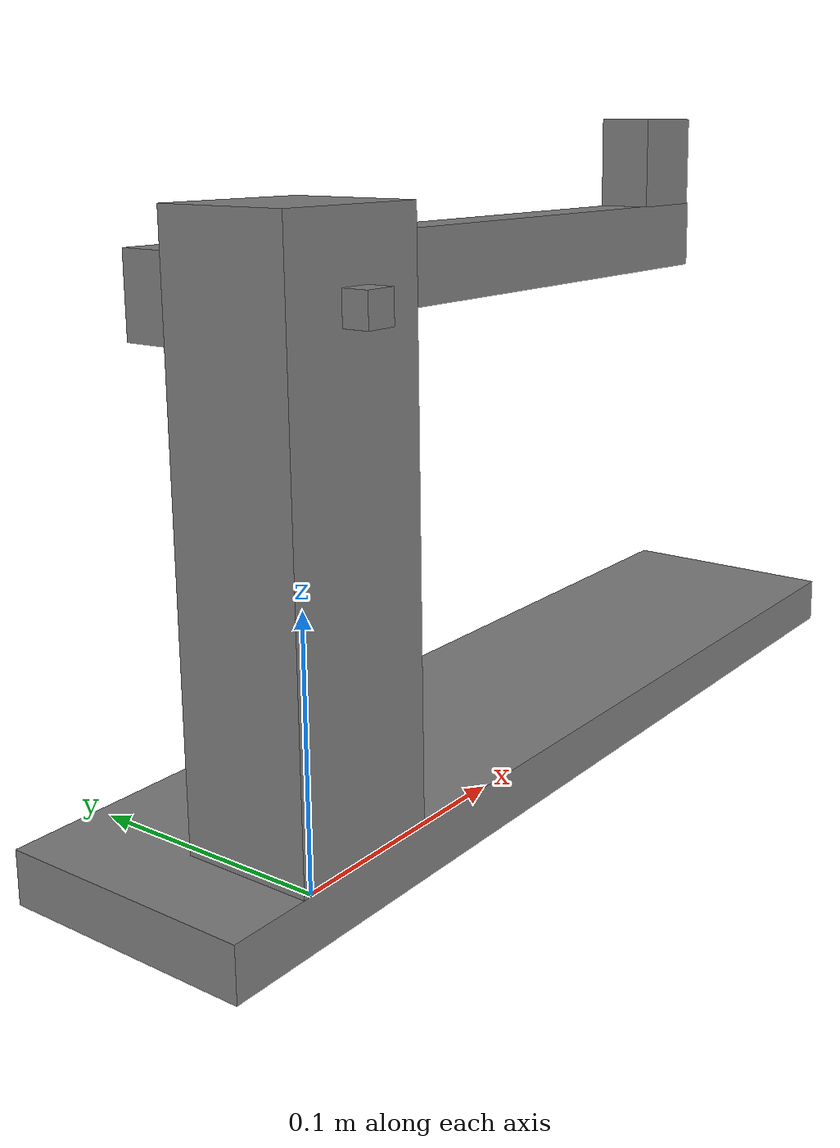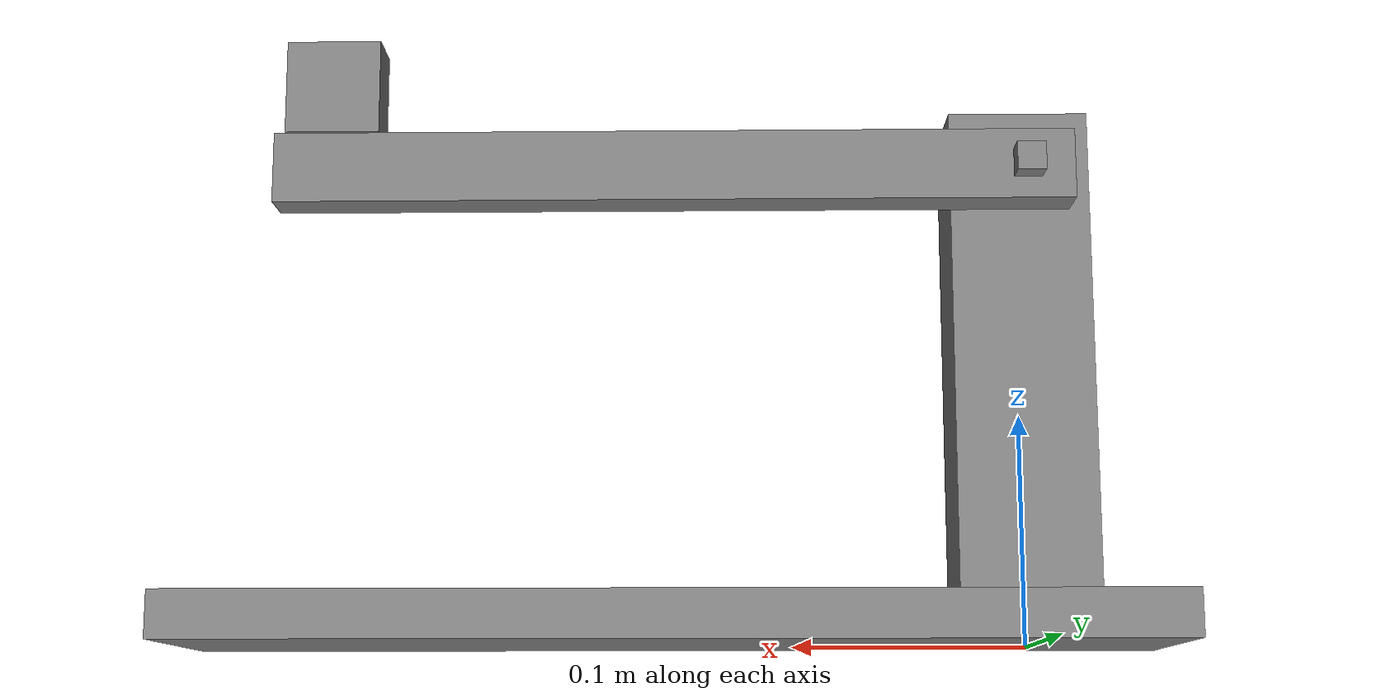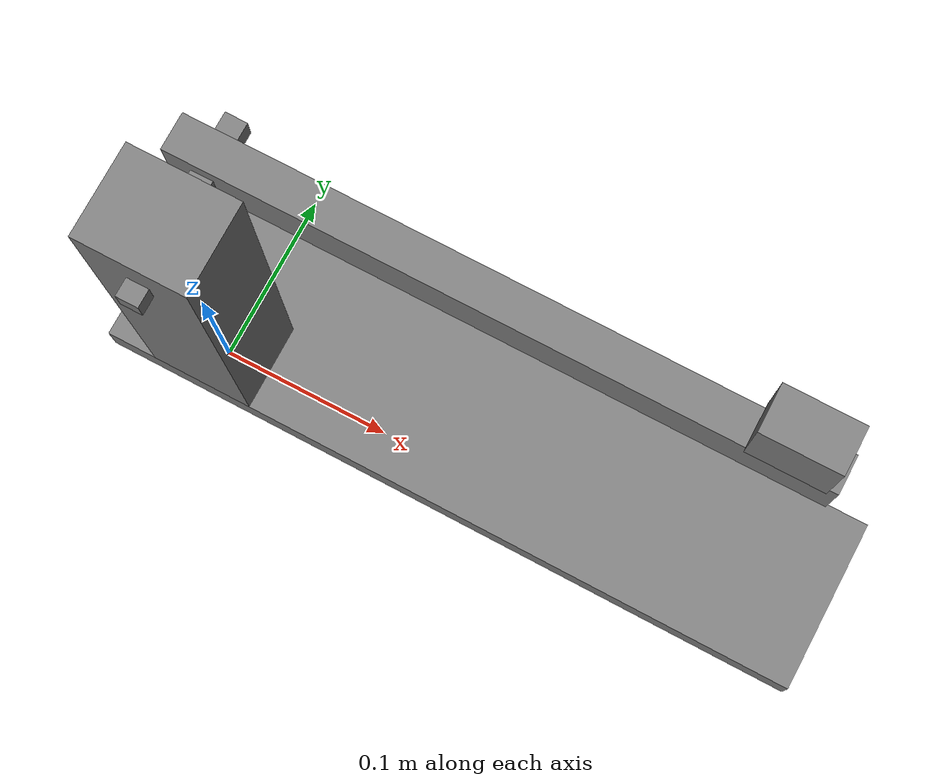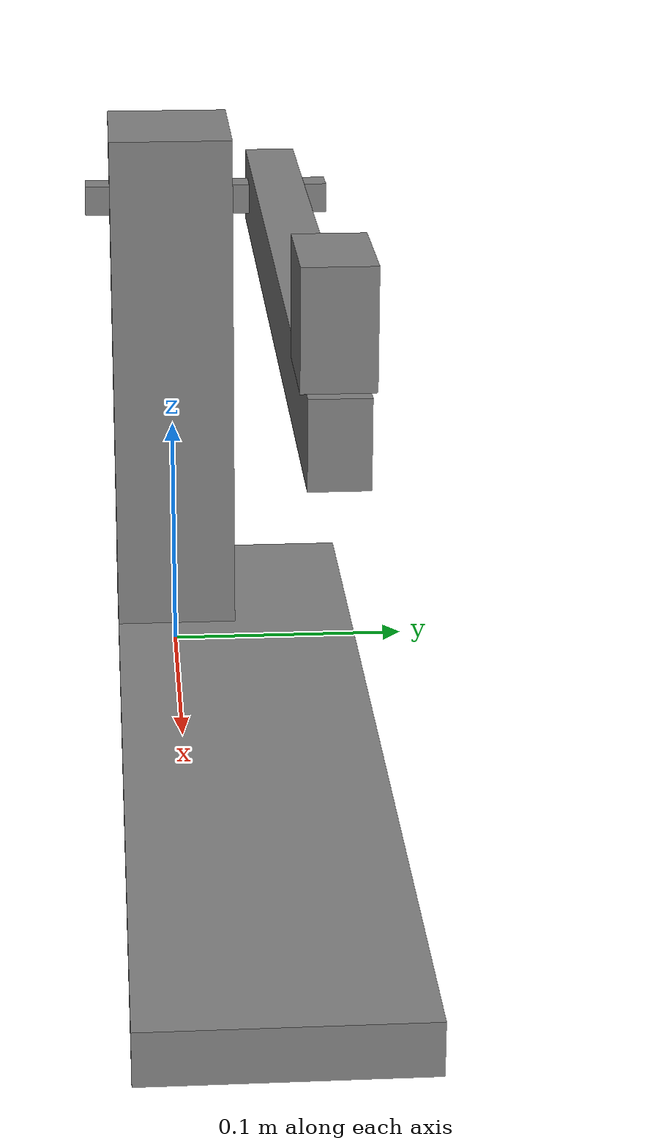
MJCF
<mujoco model="robotic_joint_001">
  <!-- Generated by tools/ecad_model/mjcf.py from the engineering model. Do not edit. -->
  <compiler angle="radian" inertiafromgeom="false" autolimits="true"/>
  <option timestep="0.0005" gravity="0 0 -9.80665" integrator="RK4">
    <flag filterparent="disable"/>
  </option>
  <worldbody>
    <body name="base_plate">
      <inertial pos="0.15 0.025 0.01" mass="2.268" fullinertia="0.0019656 0.0334152 0.0352296 1.28746032715e-18 0 0"/>
      <geom name="base_plate_proxy" type="box" pos="0.15 0.025 0.01" quat="1 0 0 0" size="0.21 0.05 0.01" contype="1" conaffinity="1" group="1"/>
      <body name="pillar">
        <inertial pos="-2.95749335842e-20 6.26919247659e-21 0.124201515364" mass="1.6830811409" fullinertia="0.00649976095895 0.00665922978665 0.000860752636405 5.74032856775e-22 3.5570445182e-21 2.42071163137e-20"/>
        <geom name="pillar_proxy" type="box" pos="0 0 0.125" quat="1 0 0 0" size="0.03 0.025 0.105" contype="1" conaffinity="1" group="1"/>
      </body>
      <body name="link">
        <inertial pos="0.151681844357 0.043 0.2" mass="0.544692743881" fullinertia="5.9411459491e-05 0.00520828608859 0.00518518747869 1.60932540894e-19 -1.23616865035e-19 6.39693098492e-22"/>
        <geom name="link_proxy" type="box" pos="0.15 0.043 0.2" quat="1 0 0 0" size="0.17 0.01 0.015" contype="1" conaffinity="1" group="1"/>
        <joint name="j1" type="hinge" pos="0 0.015 0.2" axis="0 1 0" range="-2.09439510239 0.436332312999"/>
        <body name="payload">
          <inertial pos="0.295 0.043 0.235" mass="0.30144" fullinertia="5.466112e-05 8.0384e-05 5.466112e-05 0 0 0"/>
          <geom name="payload_proxy" type="box" pos="0.295 0.043 0.235" quat="1 0 0 0" size="0.02 0.012 0.02" contype="1" conaffinity="1" group="1"/>
        </body>
        <body name="shaft">
          <inertial pos="7.23752887515e-19 0.015 0.2" mass="0.0887814083904" fullinertia="7.47835396676e-05 1.59806535103e-06 7.47835396676e-05 8.71023075888e-22 4.81774392614e-23 -4.3807628335e-24"/>
          <geom name="shaft_proxy" type="box" pos="0 0.015 0.2" quat="0.707106781187 -0.707106781187 0 0" size="0.006 0.006 0.05" contype="1" conaffinity="1" group="1"/>
        </body>
      </body>
    </body>
  </worldbody>
  <contact>
    <exclude body1="base_plate" body2="pillar"/>
    <exclude body1="link" body2="payload"/>
    <exclude body1="link" body2="shaft"/>
    <exclude body1="payload" body2="shaft"/>
    <exclude body1="pillar" body2="shaft"/>
  </contact>
</mujoco>
